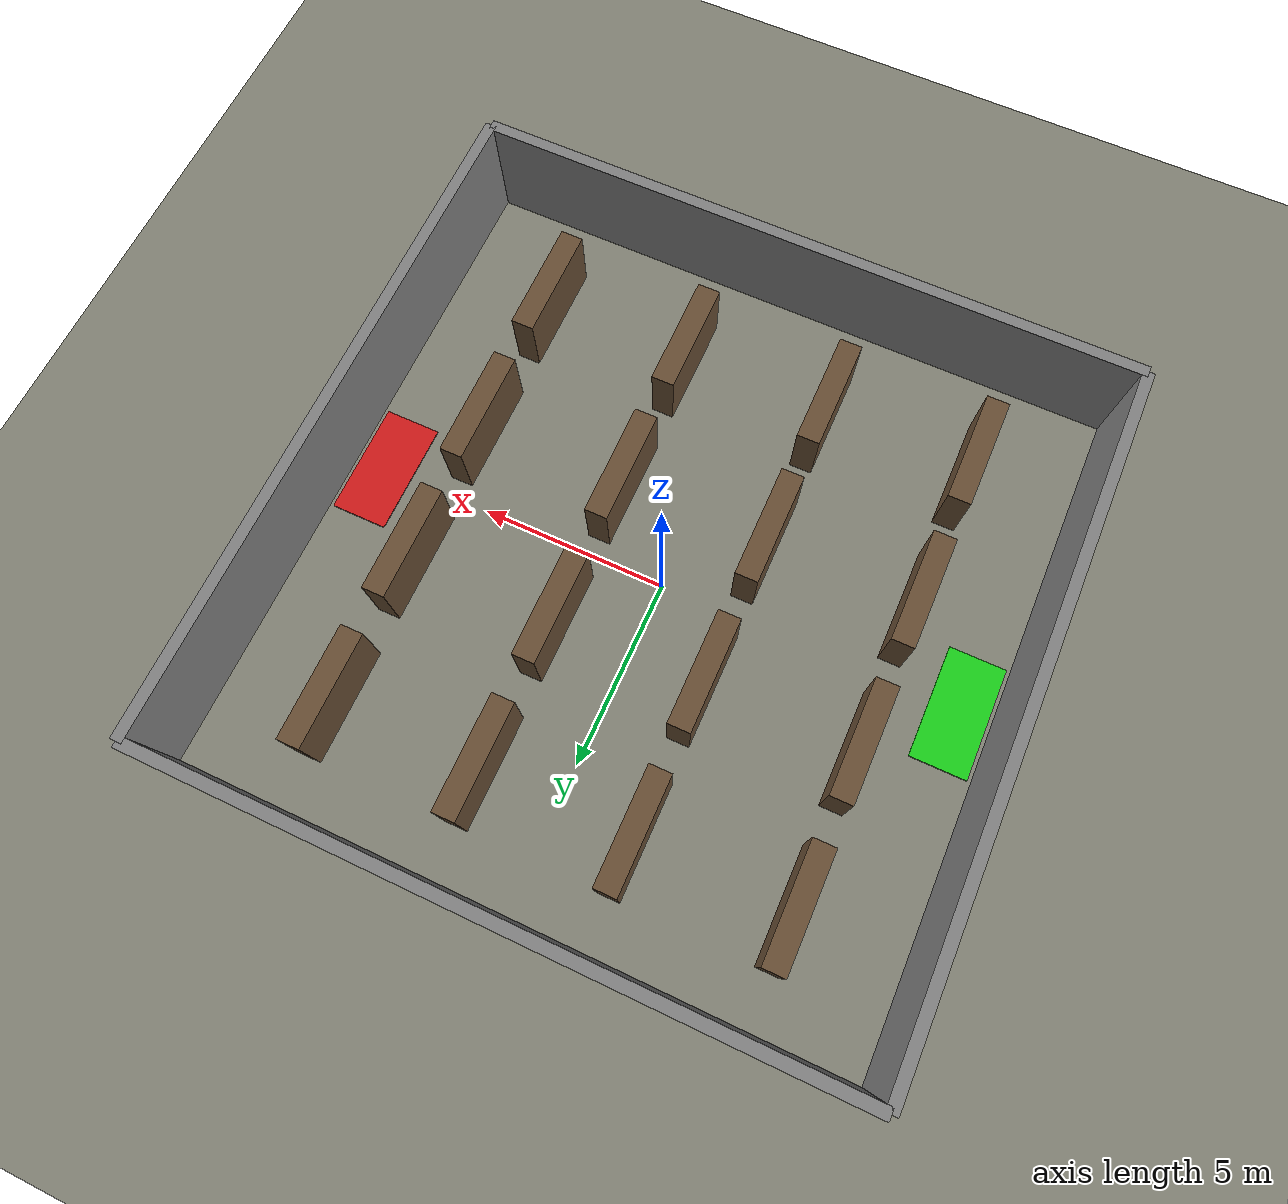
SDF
<?xml version="1.0" ?>
<sdf version="1.6">
  <world name="warehouse_depot">

    <physics name="default_physics" type="ode">
      <max_step_size>0.001</max_step_size>
      <real_time_factor>1</real_time_factor>
      <real_time_update_rate>1000</real_time_update_rate>
    </physics>

    <gravity>0 0 -9.8</gravity>

    <light name="sun" type="directional">
      <cast_shadows>true</cast_shadows>
      <pose>0 0 20 0 0 0</pose>
      <diffuse>1 1 1 1</diffuse>
      <specular>0.3 0.3 0.3 1</specular>
      <direction>-0.3 0.1 -0.9</direction>
    </light>

    <!-- Suelo con textura diferenciada -->
    <model name="ground_plane">
      <static>true</static>
      <link name="link">
        <collision name="collision">
          <geometry><plane><normal>0 0 1</normal><size>30 30</size></plane></geometry>
        </collision>
        <visual name="visual">
          <geometry><plane><normal>0 0 1</normal><size>30 30</size></plane></geometry>
          <material><ambient>0.5 0.5 0.45 1</ambient><diffuse>0.5 0.5 0.45 1</diffuse></material>
        </visual>
      </link>
    </model>

    <!-- MUROS EXTERIORES (18m x 18m)                                  -->

    <model name="wh_north"><static>true</static><pose>0 9 1.5 0 0 0</pose>
      <link name="link">
        <collision name="collision"><geometry><box><size>18 0.3 3</size></box></geometry></collision>
        <visual name="visual"><geometry><box><size>18 0.3 3</size></box></geometry>
          <material><ambient>0.5 0.5 0.5 1</ambient><diffuse>0.5 0.5 0.5 1</diffuse></material>
        </visual>
      </link>
    </model>

    <model name="wh_south"><static>true</static><pose>0 -9 1.5 0 0 0</pose>
      <link name="link">
        <collision name="collision"><geometry><box><size>18 0.3 3</size></box></geometry></collision>
        <visual name="visual"><geometry><box><size>18 0.3 3</size></box></geometry>
          <material><ambient>0.5 0.5 0.5 1</ambient><diffuse>0.5 0.5 0.5 1</diffuse></material>
        </visual>
      </link>
    </model>

    <model name="wh_east"><static>true</static><pose>9 0 1.5 0 0 0</pose>
      <link name="link">
        <collision name="collision"><geometry><box><size>0.3 18 3</size></box></geometry></collision>
        <visual name="visual"><geometry><box><size>0.3 18 3</size></box></geometry>
          <material><ambient>0.5 0.5 0.5 1</ambient><diffuse>0.5 0.5 0.5 1</diffuse></material>
        </visual>
      </link>
    </model>

    <model name="wh_west"><static>true</static><pose>-9 0 1.5 0 0 0</pose>
      <link name="link">
        <collision name="collision"><geometry><box><size>0.3 18 3</size></box></geometry></collision>
        <visual name="visual"><geometry><box><size>0.3 18 3</size></box></geometry>
          <material><ambient>0.5 0.5 0.5 1</ambient><diffuse>0.5 0.5 0.5 1</diffuse></material>
        </visual>
      </link>
    </model>

    <!-- ESTANTES EN REJILLA (4 filas x 4 columnas)                    -->
    <!-- Cada estante: 3m largo x 0.6m ancho x 1.8m alto              -->
    <!-- Espaciado: cada 4m en X, cada 3.5m en Y                       -->

    <!-- FILA 1 (Y = 6) -->
    <model name="shelf_r1c1"><static>true</static><pose>-6 6 0.9 0 0 0</pose>
      <link name="link">
        <collision name="collision"><geometry><box><size>0.6 3 1.8</size></box></geometry></collision>
        <visual name="visual"><geometry><box><size>0.6 3 1.8</size></box></geometry>
          <material><ambient>0.4 0.3 0.2 1</ambient><diffuse>0.4 0.3 0.2 1</diffuse></material>
        </visual>
      </link>
    </model>

    <model name="shelf_r1c2"><static>true</static><pose>-2 6 0.9 0 0 0</pose>
      <link name="link">
        <collision name="collision"><geometry><box><size>0.6 3 1.8</size></box></geometry></collision>
        <visual name="visual"><geometry><box><size>0.6 3 1.8</size></box></geometry>
          <material><ambient>0.4 0.3 0.2 1</ambient><diffuse>0.4 0.3 0.2 1</diffuse></material>
        </visual>
      </link>
    </model>

    <model name="shelf_r1c3"><static>true</static><pose>2 6 0.9 0 0 0</pose>
      <link name="link">
        <collision name="collision"><geometry><box><size>0.6 3 1.8</size></box></geometry></collision>
        <visual name="visual"><geometry><box><size>0.6 3 1.8</size></box></geometry>
          <material><ambient>0.4 0.3 0.2 1</ambient><diffuse>0.4 0.3 0.2 1</diffuse></material>
        </visual>
      </link>
    </model>

    <model name="shelf_r1c4"><static>true</static><pose>6 6 0.9 0 0 0</pose>
      <link name="link">
        <collision name="collision"><geometry><box><size>0.6 3 1.8</size></box></geometry></collision>
        <visual name="visual"><geometry><box><size>0.6 3 1.8</size></box></geometry>
          <material><ambient>0.4 0.3 0.2 1</ambient><diffuse>0.4 0.3 0.2 1</diffuse></material>
        </visual>
      </link>
    </model>

    <!-- FILA 2 (Y = 2) -->
    <model name="shelf_r2c1"><static>true</static><pose>-6 2 0.9 0 0 0</pose>
      <link name="link">
        <collision name="collision"><geometry><box><size>0.6 3 1.8</size></box></geometry></collision>
        <visual name="visual"><geometry><box><size>0.6 3 1.8</size></box></geometry>
          <material><ambient>0.4 0.3 0.2 1</ambient><diffuse>0.4 0.3 0.2 1</diffuse></material>
        </visual>
      </link>
    </model>

    <model name="shelf_r2c2"><static>true</static><pose>-2 2 0.9 0 0 0</pose>
      <link name="link">
        <collision name="collision"><geometry><box><size>0.6 3 1.8</size></box></geometry></collision>
        <visual name="visual"><geometry><box><size>0.6 3 1.8</size></box></geometry>
          <material><ambient>0.4 0.3 0.2 1</ambient><diffuse>0.4 0.3 0.2 1</diffuse></material>
        </visual>
      </link>
    </model>

    <model name="shelf_r2c3"><static>true</static><pose>2 2 0.9 0 0 0</pose>
      <link name="link">
        <collision name="collision"><geometry><box><size>0.6 3 1.8</size></box></geometry></collision>
        <visual name="visual"><geometry><box><size>0.6 3 1.8</size></box></geometry>
          <material><ambient>0.4 0.3 0.2 1</ambient><diffuse>0.4 0.3 0.2 1</diffuse></material>
        </visual>
      </link>
    </model>

    <model name="shelf_r2c4"><static>true</static><pose>6 2 0.9 0 0 0</pose>
      <link name="link">
        <collision name="collision"><geometry><box><size>0.6 3 1.8</size></box></geometry></collision>
        <visual name="visual"><geometry><box><size>0.6 3 1.8</size></box></geometry>
          <material><ambient>0.4 0.3 0.2 1</ambient><diffuse>0.4 0.3 0.2 1</diffuse></material>
        </visual>
      </link>
    </model>

    <!-- FILA 3 (Y = -2) -->
    <model name="shelf_r3c1"><static>true</static><pose>-6 -2 0.9 0 0 0</pose>
      <link name="link">
        <collision name="collision"><geometry><box><size>0.6 3 1.8</size></box></geometry></collision>
        <visual name="visual"><geometry><box><size>0.6 3 1.8</size></box></geometry>
          <material><ambient>0.4 0.3 0.2 1</ambient><diffuse>0.4 0.3 0.2 1</diffuse></material>
        </visual>
      </link>
    </model>

    <model name="shelf_r3c2"><static>true</static><pose>-2 -2 0.9 0 0 0</pose>
      <link name="link">
        <collision name="collision"><geometry><box><size>0.6 3 1.8</size></box></geometry></collision>
        <visual name="visual"><geometry><box><size>0.6 3 1.8</size></box></geometry>
          <material><ambient>0.4 0.3 0.2 1</ambient><diffuse>0.4 0.3 0.2 1</diffuse></material>
        </visual>
      </link>
    </model>

    <model name="shelf_r3c3"><static>true</static><pose>2 -2 0.9 0 0 0</pose>
      <link name="link">
        <collision name="collision"><geometry><box><size>0.6 3 1.8</size></box></geometry></collision>
        <visual name="visual"><geometry><box><size>0.6 3 1.8</size></box></geometry>
          <material><ambient>0.4 0.3 0.2 1</ambient><diffuse>0.4 0.3 0.2 1</diffuse></material>
        </visual>
      </link>
    </model>

    <model name="shelf_r3c4"><static>true</static><pose>6 -2 0.9 0 0 0</pose>
      <link name="link">
        <collision name="collision"><geometry><box><size>0.6 3 1.8</size></box></geometry></collision>
        <visual name="visual"><geometry><box><size>0.6 3 1.8</size></box></geometry>
          <material><ambient>0.4 0.3 0.2 1</ambient><diffuse>0.4 0.3 0.2 1</diffuse></material>
        </visual>
      </link>
    </model>

    <!-- FILA 4 (Y = -6) -->
    <model name="shelf_r4c1"><static>true</static><pose>-6 -6 0.9 0 0 0</pose>
      <link name="link">
        <collision name="collision"><geometry><box><size>0.6 3 1.8</size></box></geometry></collision>
        <visual name="visual"><geometry><box><size>0.6 3 1.8</size></box></geometry>
          <material><ambient>0.4 0.3 0.2 1</ambient><diffuse>0.4 0.3 0.2 1</diffuse></material>
        </visual>
      </link>
    </model>

    <model name="shelf_r4c2"><static>true</static><pose>-2 -6 0.9 0 0 0</pose>
      <link name="link">
        <collision name="collision"><geometry><box><size>0.6 3 1.8</size></box></geometry></collision>
        <visual name="visual"><geometry><box><size>0.6 3 1.8</size></box></geometry>
          <material><ambient>0.4 0.3 0.2 1</ambient><diffuse>0.4 0.3 0.2 1</diffuse></material>
        </visual>
      </link>
    </model>

    <model name="shelf_r4c3"><static>true</static><pose>2 -6 0.9 0 0 0</pose>
      <link name="link">
        <collision name="collision"><geometry><box><size>0.6 3 1.8</size></box></geometry></collision>
        <visual name="visual"><geometry><box><size>0.6 3 1.8</size></box></geometry>
          <material><ambient>0.4 0.3 0.2 1</ambient><diffuse>0.4 0.3 0.2 1</diffuse></material>
        </visual>
      </link>
    </model>

    <model name="shelf_r4c4"><static>true</static><pose>6 -6 0.9 0 0 0</pose>
      <link name="link">
        <collision name="collision"><geometry><box><size>0.6 3 1.8</size></box></geometry></collision>
        <visual name="visual"><geometry><box><size>0.6 3 1.8</size></box></geometry>
          <material><ambient>0.4 0.3 0.2 1</ambient><diffuse>0.4 0.3 0.2 1</diffuse></material>
        </visual>
      </link>
    </model>

    <!-- ZONAS DE CARGA / DESCARGA                                      -->

    <!-- Zona A (entrada oeste) -->
    <model name="loading_zone_a"><static>true</static><pose>-8 0 0.02 0 0 0</pose>
      <link name="link">
        <collision name="collision"><geometry><box><size>1.5 3 0.04</size></box></geometry></collision>
        <visual name="visual"><geometry><box><size>1.5 3 0.04</size></box></geometry>
          <material><ambient>0.1 0.8 0.1 1</ambient><diffuse>0.1 0.8 0.1 1</diffuse></material>
        </visual>
      </link>
    </model>

    <!-- Zona B (salida este) -->
    <model name="loading_zone_b"><static>true</static><pose>8 0 0.02 0 0 0</pose>
      <link name="link">
        <collision name="collision"><geometry><box><size>1.5 3 0.04</size></box></geometry></collision>
        <visual name="visual"><geometry><box><size>1.5 3 0.04</size></box></geometry>
          <material><ambient>0.8 0.1 0.1 1</ambient><diffuse>0.8 0.1 0.1 1</diffuse></material>
        </visual>
      </link>
    </model>

    <!-- Spawn sugerido:                                              -->
    <!-- Agente 1: pose="-8  1.5 0.1 0 0 0"  (Zona de carga A)     -->
    <!-- Agente 2: pose="-8 -1.5 0.1 0 0 0"  (Zona de carga A)     -->
    <!-- Objetivo: pose=" 8  0   0.1 0 0 0"  (Zona de descarga B)  -->

  </world>
</sdf>
